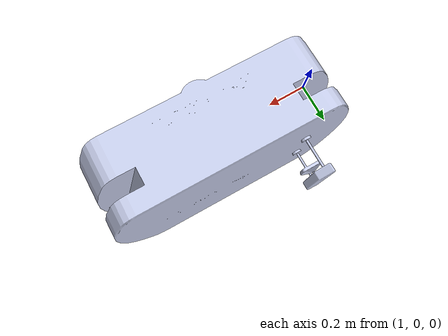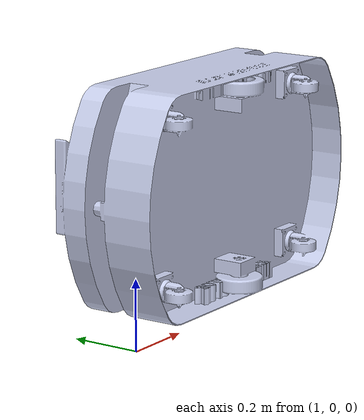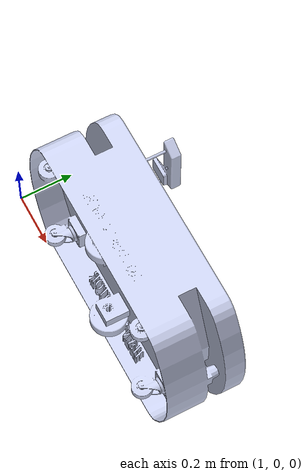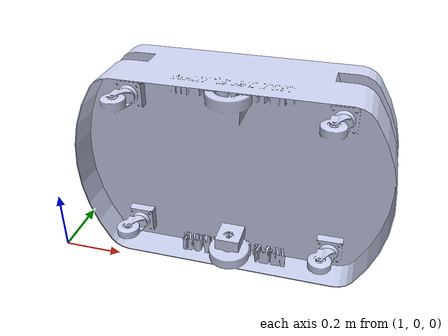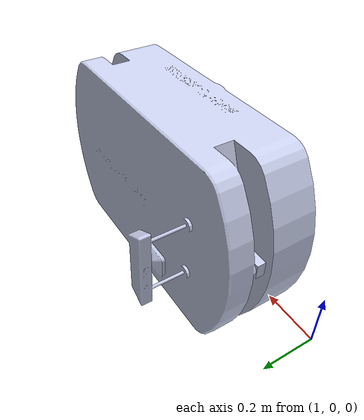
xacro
<robot
  name="slam_car">

  <link name="world"/>

  <joint name="world_car" type="fixed">
    <parent link="world"/>
    <child link="slam_car"/>
      <origin
        xyz="0 0 0.327"
        rpy="-1.57 0 0" />
  </joint>

  <link
    name="slam_car">
    <inertial>
      <origin
        xyz="0.0072919 -0.2064 -0.00673959999999999"
        rpy="0 0 0" />
      <mass
        value="109.27" />
      <inertia
        ixx="4.05879382215704"
        ixy="0.000153671844146341"
        ixz="-0.0446027277933454"
        iyy="-0.000163151810587677"
        iyz="-10.6020596461313"
        izz="0.000163151810588785" />
    </inertial>
    <visual>
      <origin
        xyz="1.5707963267949 0 0"
        rpy="0 0 0" />
      <geometry>
        <mesh
          filename="package://hansbase_description/urdf/agv/slam_car/meshes/slam_car.STL" />
      </geometry>
      <material
        name="">
        <color
          rgba="0.79216 0.81961 0.93333 1" />
      </material>
    </visual>
    <collision>
      <origin
        xyz="0 0 0"
        rpy="1.5707963267949 0 0" />
      <geometry>
        <mesh
          filename="package://hansbase_description/urdf/agv/slam_car/meshes/slam_car.STL" />
      </geometry>
    </collision>
  </link>
</robot>
